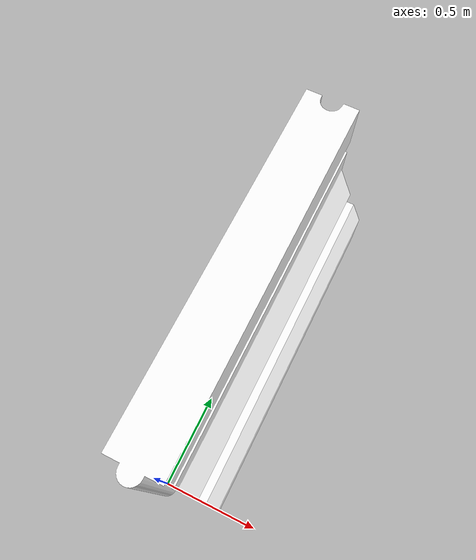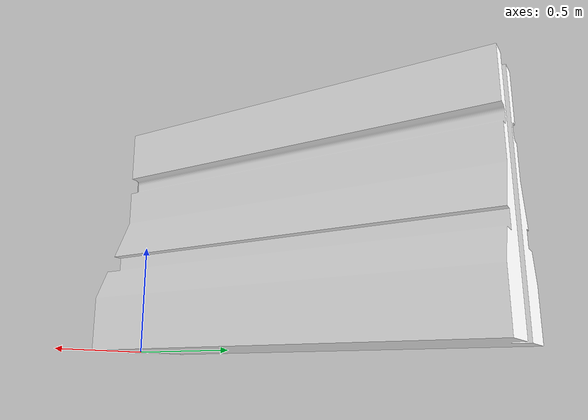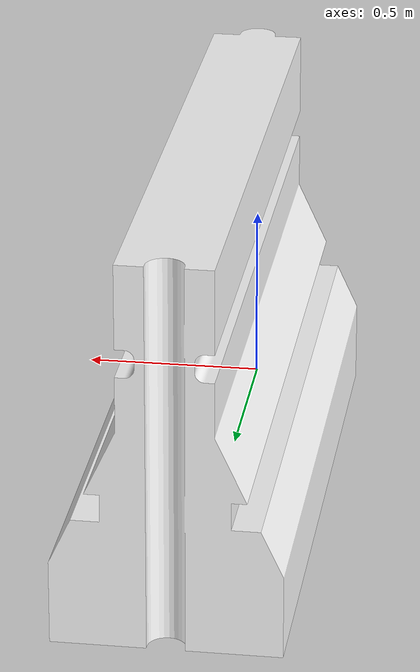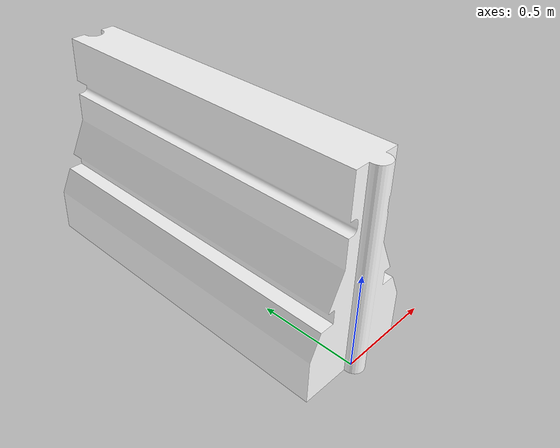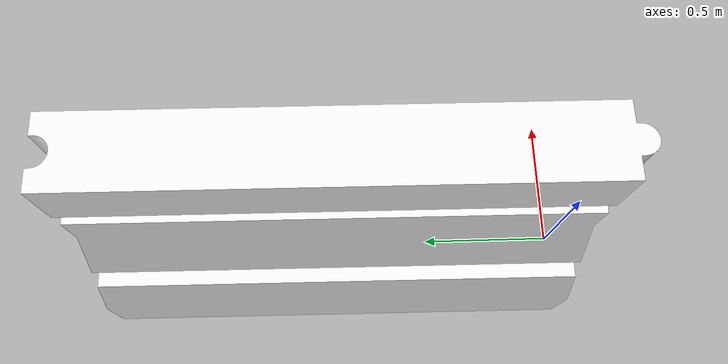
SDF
<?xml version='1.0'?>
<sdf version='1.6'>
  <model name='w_double_barrier'>
    <model name='drc_practice_white_jersey_barrier'>
      <static>1</static>
      <link name='link'>
        <visual name='visual'>
          <geometry>
            <mesh>
              <uri>model://drc_practice_white_jersey_barrier/meshes/jersey_barrier.dae</uri>
            </mesh>
          </geometry>
        </visual>
        <collision name='collision'>
          <geometry>
            <mesh>
              <uri>model://drc_practice_white_jersey_barrier/meshes/jersey_barrier.dae</uri>
            </mesh>
          </geometry>
          <max_contacts>10</max_contacts>
          <surface>
            <contact>
              <ode/>
            </contact>
            <bounce/>
            <friction>
              <torsional>
                <ode/>
              </torsional>
              <ode/>
            </friction>
          </surface>
        </collision>
        <self_collide>0</self_collide>
        <enable_wind>0</enable_wind>
        <kinematic>0</kinematic>
      </link>
      <pose frame=''>0.007818 0.870255 0 0 -0 0</pose>
    </model>
    <static>0</static>
    <allow_auto_disable>1</allow_auto_disable>
  </model>
</sdf>
